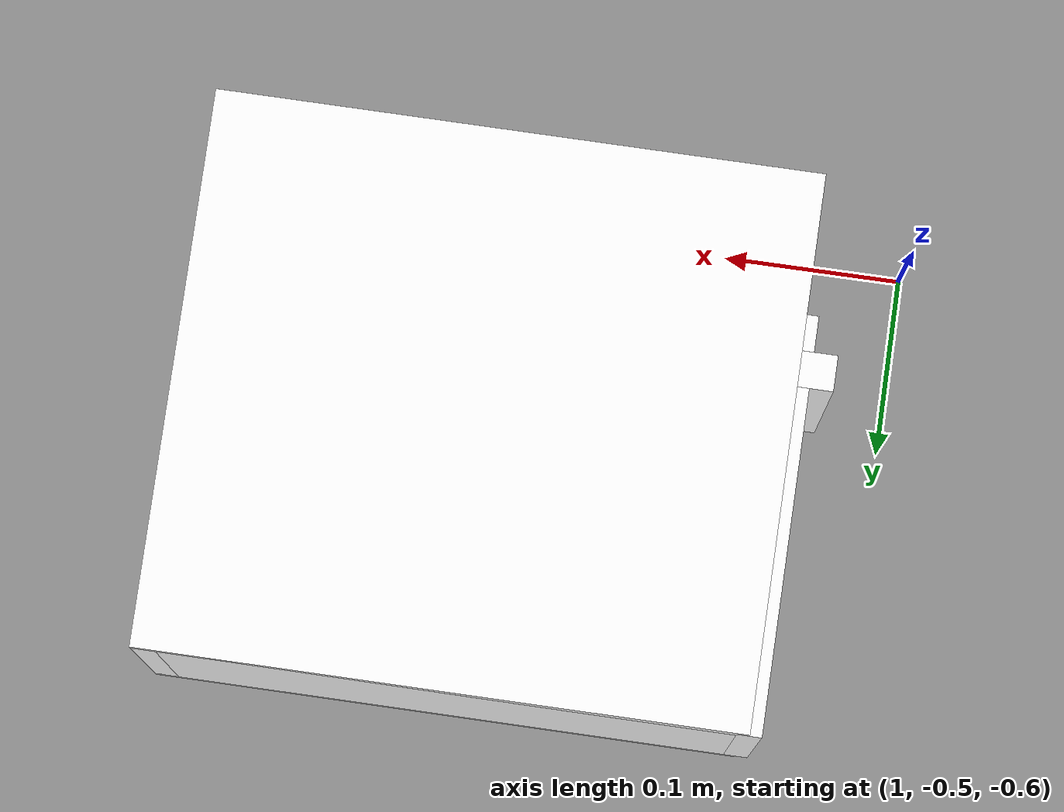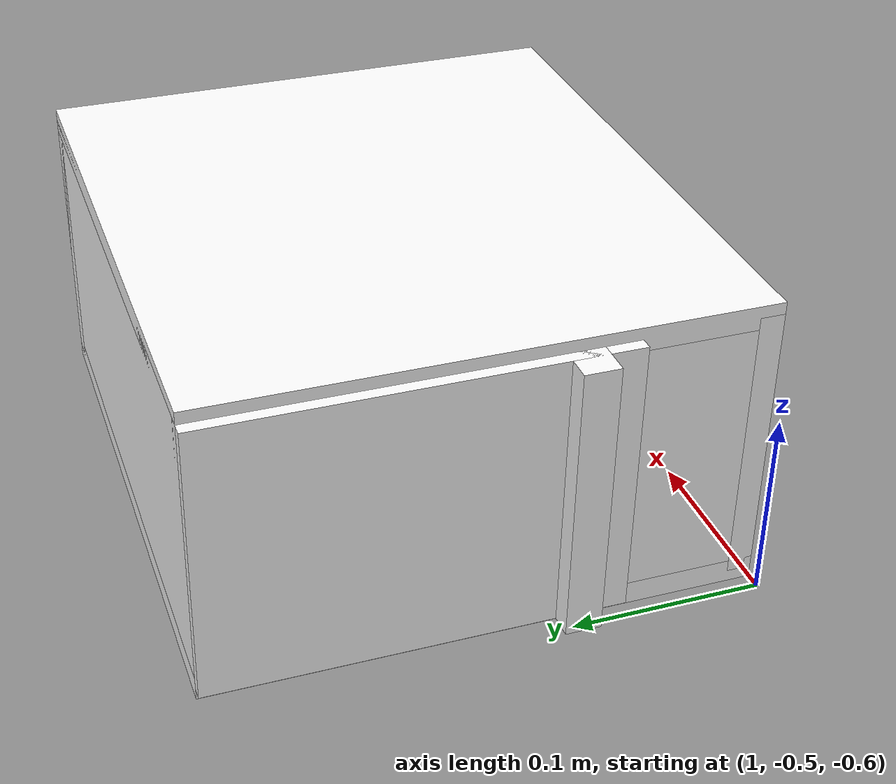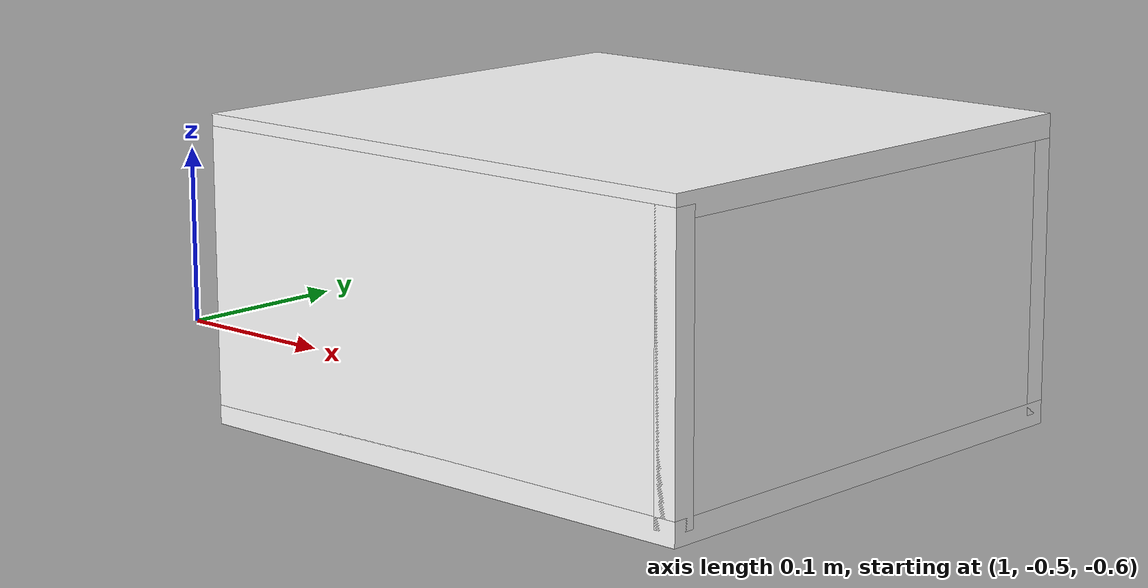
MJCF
<mujoco model="cabinet">
    <compiler angle="radian" eulerseq='zxy' />
    <option gravity = "0 0 0" />
    <option>
        <flag contact = "disable"/>
    </option>
    <statistic	extent="1.0" center="0.0 0.0 0.0"/>
    <visual>
        <map fogstart="3" fogend="5" force="0.1" znear=" 0.100000 " zfar=" 12.000000 "/>
    </visual>
    <size njmax="500" nconmax="100" />
    <actuator>
        <velocity joint="bottom_left_hinge" name="viva_revolution" kv='10'></velocity>
    </actuator>
    <asset>
        <texture builtin="flat" name="tabletex" height="32" width="32" rgb1="1 1 1" type="cube"></texture>
        <texture builtin="flat" name="objtex" height="32" width="32" rgb1="1 1 1" type="cube"></texture>
        <texture builtin="flat" name="handletex" height="32" width="32" rgb1="1 1 1" type="cube"></texture>
        <texture builtin="flat" name="wallpaper" height="32" width="32" rgb1="1 0 0" type="cube"></texture>
        <texture builtin="flat" name="kp" height="32" width="32" rgb1="1 1 1" type="cube"></texture>
        <material name="geomTable" shininess="0.03" specular="0.75" texture="tabletex"></material>
        <material name="geomObj" shininess="0.03" specular="0.75" texture="objtex"></material>
        <material name="geomHandle" shininess="0.03" specular="0.75" texture="handletex"></material>
        <material name="ax" shininess="0.03" specular="0.75" texture="wallpaper"></material>
        <material name="bg" shininess="0.03" specular="0.75" texture="wallpaper"></material>
        <material name="geomKeypad" shininess="0.03" specular="0.75" texture="kp"></material>
    </asset>
    <worldbody>
        <body name="cabinet_bottom" pos= " 1.222485 -0.375944 -0.638024 "  quat= " 0.000159 0.000000 0.000000 1.000000" >
            <inertial pos="0 0 0" mass="1" diaginertia="1 1 1" />
            <geom size= " 0.167962 0.154298 0.006829 "  type="box" material="geomObj" name="b"/>
            <body name="cabinet_left" pos= " 0.000000 -0.147469 0.080561 " >
                <inertial pos="0 0 0" mass="1" diaginertia="1 1 1" />
                <geom size= " 0.167962 0.006829 0.080561 "  type="box" material="geomObj" name="c" />
            </body>
            <body name="cabinet_right" pos= " 0.000000 0.147469 0.080561 " >
                <inertial pos="0 0 0" mass="1" diaginertia="1 1 1" />
                <geom size= " 0.167962 0.006829 0.080561 "  type="box" material="geomObj" name="d" />
            </body>
            <body name="cabinet_top" pos= " 0.000000 0.000000 0.161123 " >
                <inertial pos="0 0 0" mass="1" diaginertia="1 1 1" />
                <geom size= " 0.167962 0.154298 0.006829 "  type="box" material="geomObj" name="e"/>
            </body>
            <body name="cabinet_back" pos= " -0.161132 0.000000 0.080561 "  >
                <inertial pos="0 0 0" mass="1" diaginertia="1 1 1" />
                <geom size= " 0.006829 0.154298 0.080561 "  type="box" material="geomObj" name="f" />
            </body>
            <body name="cabinet_keypad" pos= " 0.006829 0.114724 0.080561 " >
                <inertial pos="0 0 0" mass="1" diaginertia="1 1 1" />
                <geom size= " 0.161132 0.038575 0.073732 "  type="box" material="geomKeypad" name="keypizzlemynizzle" />
            </body>
            <body name="cabinet_left_hinge" pos= " 0.167962 -0.154298 0.080561 " >
                <inertial pos= " 0.000000 0.115724 0.000000 "  mass="1" diaginertia="1 1 1" />
                <joint name="bottom_left_hinge" type="hinge" pos="0 0 0" axis="0 0 1" limited="true" range= "-2.3 0"  />
                <geom size= " 0.006829 0.115724 0.080561 "  pos= " 0.000000 0.115724 0.000000 "  type="box" material="geomObj" name="g"/>
                <body name="handle_link" pos= " 0.010000 0.201448 0.000000 " >
                    <inertial pos="0 0 0" mass="1" diaginertia="1 1 1" />
                    <geom size= " 0.010000 0.010000 0.080561 "  type="box" material="geomHandle" name="h"/>
                </body>
            </body>
        </body>
        <body name="external_camera_body_0" pos="0.0 0 0.00" >
            <camera euler="-1.57 1.57 0.0" fovy=" 54.280851 " name="external_camera_0" pos="0.0 0 0"></camera>
            <inertial pos= " 0.00 0.0 0.000000 " mass="1" diaginertia="1 1 1" />
            <joint name="cam_j" pos="0.0 0 0" axis = "1 0 0" type="free" />
        </body>
    </worldbody>
</mujoco>
